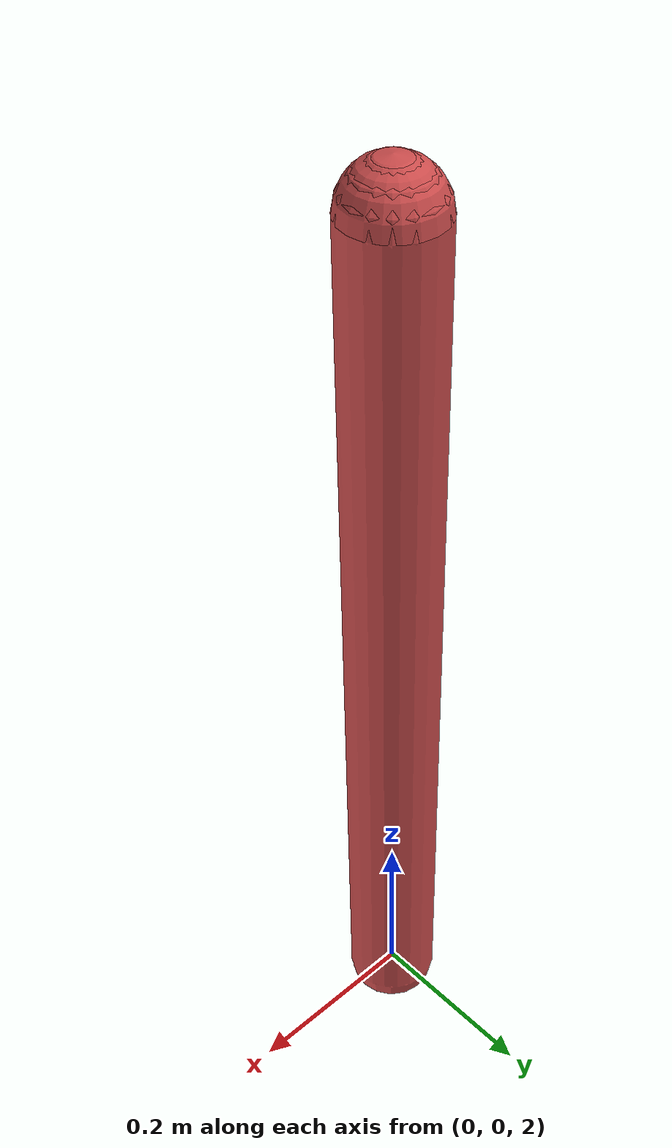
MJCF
<mujoco model="pendulum">
    <compiler angle="radian" coordinate="local" inertiafromgeom="true"/>
    <option gravity="0 0 -9.81" timestep="0.005" integrator="RK4"/>
    <visual>
        <!-- Set default offscreen resolution -->
        <global offwidth="1440" offheight="768" azimuth="90" elevation="-45"/>
        <headlight diffuse="0.6 0.6 0.6" ambient="0.3 0.3 0.3" specular="0 0 0"/>
        <rgba haze="0.15 0.25 0.35 1"/>
    </visual>

    <asset>
        <texture type="skybox" builtin="gradient" rgb1="0.3 0.5 0.7" rgb2="0 0 0" width="512" height="3072"/>
        <texture type="2d" name="groundplane" builtin="checker" mark="edge" rgb1="0.2 0.3 0.4" rgb2="0.1 0.2 0.3"
          markrgb="0.8 0.8 0.8" width="300" height="300"/>
        <material name="groundplane" texture="groundplane" texuniform="true" texrepeat="5 5" reflectance="0.2"/>
        <material name="base_mat" rgba="0.2 0.2 0.2 1"/>
        <material name="link_mat" rgba="0.8 0.3 0.3 1"/>
    </asset>

    <statistic center="0 0 2"/>

    <worldbody>
        <light pos="0 0 5" dir="0 0 -1" diffuse="1 1 1"/>
        <geom name="floor" size="0 0 0.05" type="plane" material="groundplane" pos="0 0 0"/>

        <body name="center" pos="0 0 2">
            <joint name="center_joint" type="hinge" axis="0 1 0" damping="0.01"/>
            <geom name="spoke1" type="capsule" fromto="0 0 0  0 0 1" size="0.05" material="link_mat" mass="1.0"/>
            <site name="tip" type="sphere" pos="0 0 1" size="0.05" material="link_mat"/>
        </body>
    </worldbody>
    <actuator>
        <motor name="shoulder" joint="center_joint"/>
    </actuator>
</mujoco>
